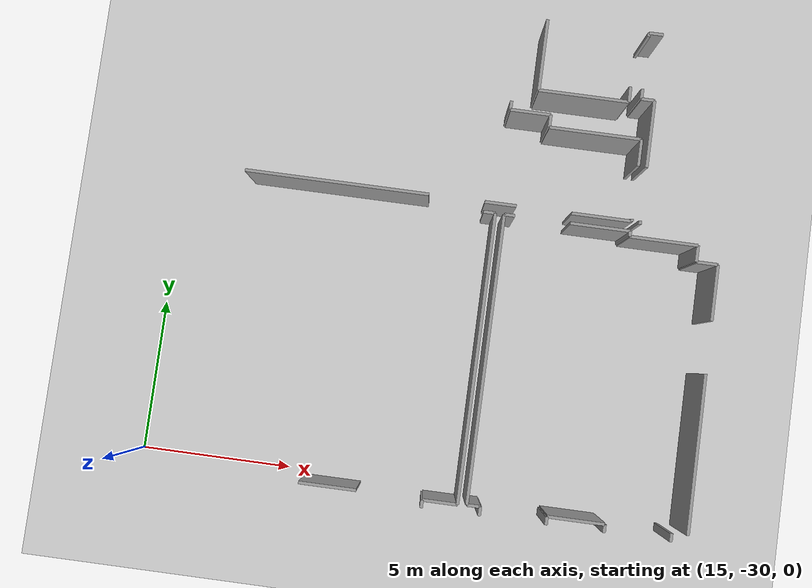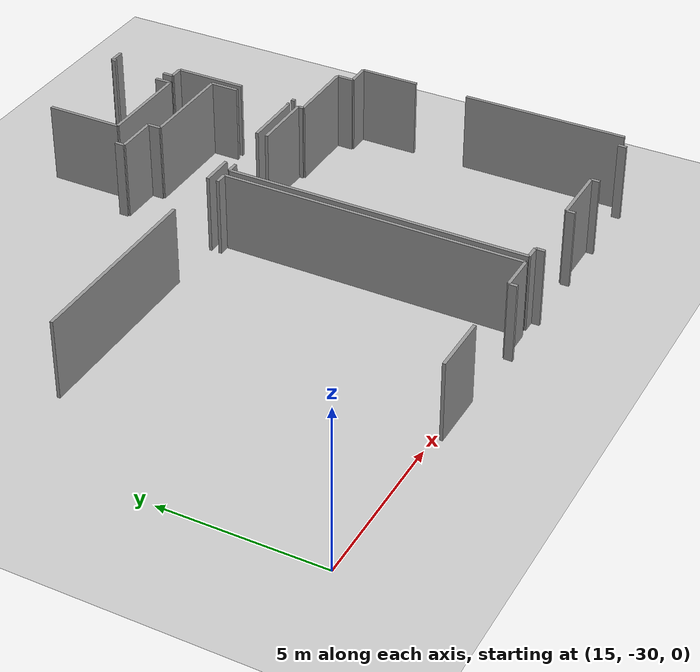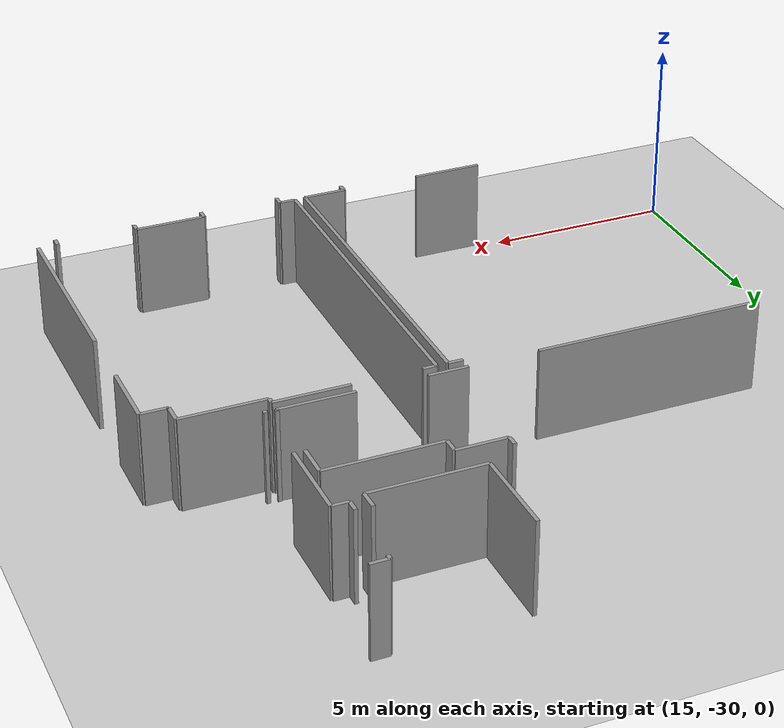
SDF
<sdf version="1.6">
 <world name="default">
  <model name="ground_plane">
   <static>1</static>
   <link name="link">
    <collision name="collision">
     <geometry><plane><normal>0 0 1</normal><size>100 100</size></plane></geometry>
     <surface><friction><ode><mu>100</mu><mu2>50</mu2></ode></friction></surface>
    </collision>
    <visual name="visual">
     <cast_shadows>0</cast_shadows>
     <geometry><plane><normal>0 0 1</normal><size>100 100</size></plane></geometry>
     <material>
      <script><uri>file://media/materials/scripts/gazebo.material</uri><name>Gazebo/Grey</name></script>
     </material>
    </visual>
   </link>
  </model>
  <model name="0510032260_A_40_1_102">
   <static>1</static>
   <link name="Wall_270">
    <collision name="Wall_270_Collision">
     <geometry><box><size>0.295093827145 0.1 2.5</size></box></geometry>
     <pose>0.147546913572 0 1.25 0 0 0</pose>
    </collision>
    <visual name="Wall_270_Visual">
     <pose>0.147546913572 0 1.25 0 0 0</pose>
     <geometry><box><size>0.295093827145 0.1 2.5</size></box></geometry>
     <material>
      <script><uri>file://media/materials/scripts/gazebo.material</uri><name>Gazebo/Grey</name></script>
      <ambient>1 1 1 1</ambient>
     </material>
    </visual>
    <pose>76.0914346637 -47.806088452 0 0 0 -1.57079632679</pose>
   </link>
   <link name="Wall_271">
    <collision name="Wall_271_Collision">
     <geometry><box><size>1.33407794285 0.1 2.5</size></box></geometry>
     <pose>0.667038971423 0 1.25 0 0 0</pose>
    </collision>
    <visual name="Wall_271_Visual">
     <pose>0.667038971423 0 1.25 0 0 0</pose>
     <geometry><box><size>1.33407794285 0.1 2.5</size></box></geometry>
     <material>
      <script><uri>file://media/materials/scripts/gazebo.material</uri><name>Gazebo/Grey</name></script>
      <ambient>1 1 1 1</ambient>
     </material>
    </visual>
    <pose>76.0914346637 -48.1011822791 0 0 0 0.0</pose>
   </link>
   <link name="Wall_272">
    <collision name="Wall_272_Collision">
     <geometry><box><size>0.412623669698 0.1 2.5</size></box></geometry>
     <pose>0.206311834849 0 1.25 0 0 0</pose>
    </collision>
    <visual name="Wall_272_Visual">
     <pose>0.206311834849 0 1.25 0 0 0</pose>
     <geometry><box><size>0.412623669698 0.1 2.5</size></box></geometry>
     <material>
      <script><uri>file://media/materials/scripts/gazebo.material</uri><name>Gazebo/Grey</name></script>
      <ambient>1 1 1 1</ambient>
     </material>
    </visual>
    <pose>77.4255126065 -48.1011822791 0 0 0 -1.57079632679</pose>
   </link>
   <link name="Wall_273">
    <collision name="Wall_273_Collision">
     <geometry><box><size>3.04232216631 0.1 2.5</size></box></geometry>
     <pose>1.52116108315 0 1.25 0 0 0</pose>
    </collision>
    <visual name="Wall_273_Visual">
     <pose>1.52116108315 0 1.25 0 0 0</pose>
     <geometry><box><size>3.04232216631 0.1 2.5</size></box></geometry>
     <material>
      <script><uri>file://media/materials/scripts/gazebo.material</uri><name>Gazebo/Grey</name></script>
      <ambient>1 1 1 1</ambient>
     </material>
    </visual>
    <pose>77.4255126065 -48.5138059488 0 0 0 0.0</pose>
   </link>
   <link name="Wall_274">
    <collision name="Wall_274_Collision">
     <geometry><box><size>0.892516039777 0.1 2.5</size></box></geometry>
     <pose>0.446258019889 0 1.25 0 0 0</pose>
    </collision>
    <visual name="Wall_274_Visual">
     <pose>0.446258019889 0 1.25 0 0 0</pose>
     <geometry><box><size>0.892516039777 0.1 2.5</size></box></geometry>
     <material>
      <script><uri>file://media/materials/scripts/gazebo.material</uri><name>Gazebo/Grey</name></script>
      <ambient>1 1 1 1</ambient>
     </material>
    </visual>
    <pose>80.4678347728 -48.5138059488 0 0 0 -1.57079632679</pose>
   </link>
   <link name="Wall_275">
    <collision name="Wall_275_Collision">
     <geometry><box><size>0.0751378691053 0.1 2.5</size></box></geometry>
     <pose>0.0375689345526 0 1.25 0 0 0</pose>
    </collision>
    <visual name="Wall_275_Visual">
     <pose>0.0375689345526 0 1.25 0 0 0</pose>
     <geometry><box><size>0.0751378691053 0.1 2.5</size></box></geometry>
     <material>
      <script><uri>file://media/materials/scripts/gazebo.material</uri><name>Gazebo/Grey</name></script>
      <ambient>1 1 1 1</ambient>
     </material>
    </visual>
    <pose>80.4678347728 -51.1601312374 0 0 0 -1.57079632679</pose>
   </link>
   <link name="Wall_276">
    <collision name="Wall_276_Collision">
     <geometry><box><size>1.9686883238 0.1 2.5</size></box></geometry>
     <pose>0.984344161902 0 1.25 0 0 0</pose>
    </collision>
    <visual name="Wall_276_Visual">
     <pose>0.984344161902 0 1.25 0 0 0</pose>
     <geometry><box><size>1.9686883238 0.1 2.5</size></box></geometry>
     <material>
      <script><uri>file://media/materials/scripts/gazebo.material</uri><name>Gazebo/Grey</name></script>
      <ambient>1 1 1 1</ambient>
     </material>
    </visual>
    <pose>80.4678347728 -51.2352691065 0 0 0 3.14159265359</pose>
   </link>
   <link name="Wall_277">
    <collision name="Wall_277_Collision">
     <geometry><box><size>1.03746105079 0.1 2.5</size></box></geometry>
     <pose>0.518730525394 0 1.25 0 0 0</pose>
    </collision>
    <visual name="Wall_277_Visual">
     <pose>0.518730525394 0 1.25 0 0 0</pose>
     <geometry><box><size>1.03746105079 0.1 2.5</size></box></geometry>
     <material>
      <script><uri>file://media/materials/scripts/gazebo.material</uri><name>Gazebo/Grey</name></script>
      <ambient>1 1 1 1</ambient>
     </material>
    </visual>
    <pose>76.6879684218 -51.2352691065 0 0 0 3.14159265359</pose>
   </link>
   <link name="Wall_278">
    <collision name="Wall_278_Collision">
     <geometry><box><size>6.05392919017 0.1 2.5</size></box></geometry>
     <pose>3.02696459509 0 1.25 0 0 0</pose>
    </collision>
    <visual name="Wall_278_Visual">
     <pose>3.02696459509 0 1.25 0 0 0</pose>
     <geometry><box><size>6.05392919017 0.1 2.5</size></box></geometry>
     <material>
      <script><uri>file://media/materials/scripts/gazebo.material</uri><name>Gazebo/Grey</name></script>
      <ambient>1 1 1 1</ambient>
     </material>
    </visual>
    <pose>73.8150872272 -51.2352691065 0 0 0 3.14159265359</pose>
   </link>
   <link name="Wall_449">
    <collision name="Wall_449_Collision">
     <geometry><box><size>1.13392182869 0.1 2.5</size></box></geometry>
     <pose>0.566960914347 0 1.25 0 0 0</pose>
    </collision>
    <visual name="Wall_449_Visual">
     <pose>0.566960914347 0 1.25 0 0 0</pose>
     <geometry><box><size>1.13392182869 0.1 2.5</size></box></geometry>
     <material>
      <script><uri>file://media/materials/scripts/gazebo.material</uri><name>Gazebo/Grey</name></script>
      <ambient>1 1 1 1</ambient>
     </material>
    </visual>
    <pose>76.0362235605 -61.0031920902 0 0 0 3.14159265359</pose>
   </link>
   <link name="Wall_450">
    <collision name="Wall_450_Collision">
     <geometry><box><size>0.254859528992 0.1 2.5</size></box></geometry>
     <pose>0.127429764496 0 1.25 0 0 0</pose>
    </collision>
    <visual name="Wall_450_Visual">
     <pose>0.127429764496 0 1.25 0 0 0</pose>
     <geometry><box><size>0.254859528992 0.1 2.5</size></box></geometry>
     <material>
      <script><uri>file://media/materials/scripts/gazebo.material</uri><name>Gazebo/Grey</name></script>
      <ambient>1 1 1 1</ambient>
     </material>
    </visual>
    <pose>74.9023017319 -61.0031920902 0 0 0 -1.57079632679</pose>
   </link>
   <link name="Wall_452">
    <collision name="Wall_452_Collision">
     <geometry><box><size>1.86105840319 0.1 2.5</size></box></geometry>
     <pose>0.930529201597 0 1.25 0 0 0</pose>
    </collision>
    <visual name="Wall_452_Visual">
     <pose>0.930529201597 0 1.25 0 0 0</pose>
     <geometry><box><size>1.86105840319 0.1 2.5</size></box></geometry>
     <material>
      <script><uri>file://media/materials/scripts/gazebo.material</uri><name>Gazebo/Grey</name></script>
      <ambient>1 1 1 1</ambient>
     </material>
    </visual>
    <pose>72.7741992804 -60.9826307139 0 0 0 3.14159265359</pose>
   </link>
   <link name="Wall_464">
    <collision name="Wall_464_Collision">
     <geometry><box><size>0.38622387785 0.1 2.5</size></box></geometry>
     <pose>0.193111938925 0 1.25 0 0 0</pose>
    </collision>
    <visual name="Wall_464_Visual">
     <pose>0.193111938925 0 1.25 0 0 0</pose>
     <geometry><box><size>0.38622387785 0.1 2.5</size></box></geometry>
     <material>
      <script><uri>file://media/materials/scripts/gazebo.material</uri><name>Gazebo/Grey</name></script>
      <ambient>1 1 1 1</ambient>
     </material>
    </visual>
    <pose>75.650507371 -51.5620934527 0 0 0 0.0</pose>
   </link>
   <link name="Wall_465">
    <collision name="Wall_465_Collision">
     <geometry><box><size>9.44109865114 0.1 2.5</size></box></geometry>
     <pose>4.72054932557 0 1.25 0 0 0</pose>
    </collision>
    <visual name="Wall_465_Visual">
     <pose>4.72054932557 0 1.25 0 0 0</pose>
     <geometry><box><size>9.44109865114 0.1 2.5</size></box></geometry>
     <material>
      <script><uri>file://media/materials/scripts/gazebo.material</uri><name>Gazebo/Grey</name></script>
      <ambient>1 1 1 1</ambient>
     </material>
    </visual>
    <pose>76.0367312488 -51.5620934527 0 0 0 -1.57085010108</pose>
   </link>
   <link name="Wall_467">
    <collision name="Wall_467_Collision">
     <geometry><box><size>0.264886373011 0.1 2.5</size></box></geometry>
     <pose>0.132443186506 0 1.25 0 0 0</pose>
    </collision>
    <visual name="Wall_467_Visual">
     <pose>0.132443186506 0 1.25 0 0 0</pose>
     <geometry><box><size>0.264886373011 0.1 2.5</size></box></geometry>
     <material>
      <script><uri>file://media/materials/scripts/gazebo.material</uri><name>Gazebo/Grey</name></script>
      <ambient>1 1 1 1</ambient>
     </material>
    </visual>
    <pose>82.9015655838 -60.9949421553 0 0 0 -1.57079632679</pose>
   </link>
   <link name="Wall_468">
    <collision name="Wall_468_Collision">
     <geometry><box><size>0.264505606783 0.1 2.5</size></box></geometry>
     <pose>0.132252803391 0 1.25 0 0 0</pose>
    </collision>
    <visual name="Wall_468_Visual">
     <pose>0.132252803391 0 1.25 0 0 0</pose>
     <geometry><box><size>0.264505606783 0.1 2.5</size></box></geometry>
     <material>
      <script><uri>file://media/materials/scripts/gazebo.material</uri><name>Gazebo/Grey</name></script>
      <ambient>1 1 1 1</ambient>
     </material>
    </visual>
    <pose>80.7661016519 -61.2598285283 0 0 0 1.57079632679</pose>
   </link>
   <link name="Wall_469">
    <collision name="Wall_469_Collision">
     <geometry><box><size>1.85775842921 0.1 2.5</size></box></geometry>
     <pose>0.928879214606 0 1.25 0 0 0</pose>
    </collision>
    <visual name="Wall_469_Visual">
     <pose>0.928879214606 0 1.25 0 0 0</pose>
     <geometry><box><size>1.85775842921 0.1 2.5</size></box></geometry>
     <material>
      <script><uri>file://media/materials/scripts/gazebo.material</uri><name>Gazebo/Grey</name></script>
      <ambient>1 1 1 1</ambient>
     </material>
    </visual>
    <pose>80.7661016519 -60.9953229215 0 0 0 3.14159265359</pose>
   </link>
   <link name="Wall_470">
    <collision name="Wall_470_Collision">
     <geometry><box><size>0.268440191145 0.1 2.5</size></box></geometry>
     <pose>0.134220095572 0 1.25 0 0 0</pose>
    </collision>
    <visual name="Wall_470_Visual">
     <pose>0.134220095572 0 1.25 0 0 0</pose>
     <geometry><box><size>0.268440191145 0.1 2.5</size></box></geometry>
     <material>
      <script><uri>file://media/materials/scripts/gazebo.material</uri><name>Gazebo/Grey</name></script>
      <ambient>1 1 1 1</ambient>
     </material>
    </visual>
    <pose>78.9083432227 -60.9953229215 0 0 0 -1.57079632679</pose>
   </link>
   <link name="Wall_471">
    <collision name="Wall_471_Collision">
     <geometry><box><size>0.29027078825 0.1 2.5</size></box></geometry>
     <pose>0.145135394125 0 1.25 0 0 0</pose>
    </collision>
    <visual name="Wall_471_Visual">
     <pose>0.145135394125 0 1.25 0 0 0</pose>
     <geometry><box><size>0.29027078825 0.1 2.5</size></box></geometry>
     <material>
      <script><uri>file://media/materials/scripts/gazebo.material</uri><name>Gazebo/Grey</name></script>
      <ambient>1 1 1 1</ambient>
     </material>
    </visual>
    <pose>76.7676754856 -61.2637631126 0 0 0 1.57079632679</pose>
   </link>
   <link name="Wall_472">
    <collision name="Wall_472_Collision">
     <geometry><box><size>0.435469643412 0.1 2.5</size></box></geometry>
     <pose>0.217734821706 0 1.25 0 0 0</pose>
    </collision>
    <visual name="Wall_472_Visual">
     <pose>0.217734821706 0 1.25 0 0 0</pose>
     <geometry><box><size>0.435469643412 0.1 2.5</size></box></geometry>
     <material>
      <script><uri>file://media/materials/scripts/gazebo.material</uri><name>Gazebo/Grey</name></script>
      <ambient>1 1 1 1</ambient>
     </material>
    </visual>
    <pose>76.7676754856 -60.9734923244 0 0 0 3.14159265359</pose>
   </link>
   <link name="Wall_473">
    <collision name="Wall_473_Collision">
     <geometry><box><size>9.41139887166 0.1 2.5</size></box></geometry>
     <pose>4.70569943583 0 1.25 0 0 0</pose>
    </collision>
    <visual name="Wall_473_Visual">
     <pose>4.70569943583 0 1.25 0 0 0</pose>
     <geometry><box><size>9.41139887166 0.1 2.5</size></box></geometry>
     <material>
      <script><uri>file://media/materials/scripts/gazebo.material</uri><name>Gazebo/Grey</name></script>
      <ambient>1 1 1 1</ambient>
     </material>
    </visual>
    <pose>76.3322058422 -60.9734923244 0 0 0 1.57079632679</pose>
   </link>
   <link name="Wall_474">
    <collision name="Wall_474_Collision">
     <geometry><box><size>0.350178008212 0.1 2.5</size></box></geometry>
     <pose>0.175089004106 0 1.25 0 0 0</pose>
    </collision>
    <visual name="Wall_474_Visual">
     <pose>0.175089004106 0 1.25 0 0 0</pose>
     <geometry><box><size>0.350178008212 0.1 2.5</size></box></geometry>
     <material>
      <script><uri>file://media/materials/scripts/gazebo.material</uri><name>Gazebo/Grey</name></script>
      <ambient>1 1 1 1</ambient>
     </material>
    </visual>
    <pose>76.3322058422 -51.5620934527 0 0 0 0.0</pose>
   </link>
   <link name="Wall_475">
    <collision name="Wall_475_Collision">
     <geometry><box><size>1.96741910304 0.1 2.5</size></box></geometry>
     <pose>0.983709551521 0 1.25 0 0 0</pose>
    </collision>
    <visual name="Wall_475_Visual">
     <pose>0.983709551521 0 1.25 0 0 0</pose>
     <geometry><box><size>1.96741910304 0.1 2.5</size></box></geometry>
     <material>
      <script><uri>file://media/materials/scripts/gazebo.material</uri><name>Gazebo/Grey</name></script>
      <ambient>1 1 1 1</ambient>
     </material>
    </visual>
    <pose>78.490769592 -51.5620934527 0 0 0 0.0</pose>
   </link>
   <link name="Wall_476">
    <collision name="Wall_476_Collision">
     <geometry><box><size>0.176421685906 0.1 2.5</size></box></geometry>
     <pose>0.088210842953 0 1.25 0 0 0</pose>
    </collision>
    <visual name="Wall_476_Visual">
     <pose>0.088210842953 0 1.25 0 0 0</pose>
     <geometry><box><size>0.176421685906 0.1 2.5</size></box></geometry>
     <material>
      <script><uri>file://media/materials/scripts/gazebo.material</uri><name>Gazebo/Grey</name></script>
      <ambient>1 1 1 1</ambient>
     </material>
    </visual>
    <pose>80.4581886951 -51.5620934527 0 0 0 -1.57079632679</pose>
   </link>
   <link name="Wall_477">
    <collision name="Wall_477_Collision">
     <geometry><box><size>2.23611313834 0.1 2.5</size></box></geometry>
     <pose>1.11805656917 0 1.25 0 0 0</pose>
    </collision>
    <visual name="Wall_477_Visual">
     <pose>1.11805656917 0 1.25 0 0 0</pose>
     <geometry><box><size>2.23611313834 0.1 2.5</size></box></geometry>
     <material>
      <script><uri>file://media/materials/scripts/gazebo.material</uri><name>Gazebo/Grey</name></script>
      <ambient>1 1 1 1</ambient>
     </material>
    </visual>
    <pose>80.4581886951 -51.7385151386 0 0 0 0.0</pose>
   </link>
   <link name="Wall_478">
    <collision name="Wall_478_Collision">
     <geometry><box><size>0.537388070594 0.1 2.5</size></box></geometry>
     <pose>0.268694035297 0 1.25 0 0 0</pose>
    </collision>
    <visual name="Wall_478_Visual">
     <pose>0.268694035297 0 1.25 0 0 0</pose>
     <geometry><box><size>0.537388070594 0.1 2.5</size></box></geometry>
     <material>
      <script><uri>file://media/materials/scripts/gazebo.material</uri><name>Gazebo/Grey</name></script>
      <ambient>1 1 1 1</ambient>
     </material>
    </visual>
    <pose>82.6943018334 -51.7385151386 0 0 0 -1.57079632679</pose>
   </link>
   <link name="Wall_479">
    <collision name="Wall_479_Collision">
     <geometry><box><size>0.71012901629 0.1 2.5</size></box></geometry>
     <pose>0.355064508145 0 1.25 0 0 0</pose>
    </collision>
    <visual name="Wall_479_Visual">
     <pose>0.355064508145 0 1.25 0 0 0</pose>
     <geometry><box><size>0.71012901629 0.1 2.5</size></box></geometry>
     <material>
      <script><uri>file://media/materials/scripts/gazebo.material</uri><name>Gazebo/Grey</name></script>
      <ambient>1 1 1 1</ambient>
     </material>
    </visual>
    <pose>82.6943018334 -52.2759032092 0 0 0 0.0</pose>
   </link>
   <link name="Wall_480">
    <collision name="Wall_480_Collision">
     <geometry><box><size>1.8429085463 0.1 2.5</size></box></geometry>
     <pose>0.921454273149 0 1.25 0 0 0</pose>
    </collision>
    <visual name="Wall_480_Visual">
     <pose>0.921454273149 0 1.25 0 0 0</pose>
     <geometry><box><size>1.8429085463 0.1 2.5</size></box></geometry>
     <material>
      <script><uri>file://media/materials/scripts/gazebo.material</uri><name>Gazebo/Grey</name></script>
      <ambient>1 1 1 1</ambient>
     </material>
    </visual>
    <pose>83.4044308497 -52.2759032092 0 0 0 -1.57079632679</pose>
   </link>
   <link name="Wall_481">
    <collision name="Wall_481_Collision">
     <geometry><box><size>5.16524517813 0.1 2.5</size></box></geometry>
     <pose>2.58262258907 0 1.25 0 0 0</pose>
    </collision>
    <visual name="Wall_481_Visual">
     <pose>2.58262258907 0 1.25 0 0 0</pose>
     <geometry><box><size>5.16524517813 0.1 2.5</size></box></geometry>
     <material>
      <script><uri>file://media/materials/scripts/gazebo.material</uri><name>Gazebo/Grey</name></script>
      <ambient>1 1 1 1</ambient>
     </material>
    </visual>
    <pose>83.4044308497 -55.8297213426 0 0 0 -1.56772478151</pose>
   </link>
   <link name="Wall_490">
    <collision name="Wall_490_Collision">
     <geometry><box><size>0.117022154248 0.1 2.5</size></box></geometry>
     <pose>0.0585110771242 0 1.25 0 0 0</pose>
    </collision>
    <visual name="Wall_490_Visual">
     <pose>0.0585110771242 0 1.25 0 0 0</pose>
     <geometry><box><size>0.117022154248 0.1 2.5</size></box></geometry>
     <material>
      <script><uri>file://media/materials/scripts/gazebo.material</uri><name>Gazebo/Grey</name></script>
      <ambient>1 1 1 1</ambient>
     </material>
    </visual>
    <pose>80.7384326393 -51.3021570407 0 0 0 1.57079632679</pose>
   </link>
   <link name="Wall_491">
    <collision name="Wall_491_Collision">
     <geometry><box><size>2.23649390457 0.1 2.5</size></box></geometry>
     <pose>1.11824695228 0 1.25 0 0 0</pose>
    </collision>
    <visual name="Wall_491_Visual">
     <pose>1.11824695228 0 1.25 0 0 0</pose>
     <geometry><box><size>2.23649390457 0.1 2.5</size></box></geometry>
     <material>
      <script><uri>file://media/materials/scripts/gazebo.material</uri><name>Gazebo/Grey</name></script>
      <ambient>1 1 1 1</ambient>
     </material>
    </visual>
    <pose>80.7384326393 -49.4159680664 0 0 0 1.57079632679</pose>
   </link>
   <link name="Wall_492">
    <collision name="Wall_492_Collision">
     <geometry><box><size>0.436738864174 0.1 2.5</size></box></geometry>
     <pose>0.218369432087 0 1.25 0 0 0</pose>
    </collision>
    <visual name="Wall_492_Visual">
     <pose>0.218369432087 0 1.25 0 0 0</pose>
     <geometry><box><size>0.436738864174 0.1 2.5</size></box></geometry>
     <material>
      <script><uri>file://media/materials/scripts/gazebo.material</uri><name>Gazebo/Grey</name></script>
      <ambient>1 1 1 1</ambient>
     </material>
    </visual>
    <pose>80.7384326393 -47.1794741618 0 0 0 3.14159265359</pose>
   </link>
   <link name="Wall_493">
    <collision name="Wall_493_Collision">
     <geometry><box><size>0.333805060383 0.1 2.5</size></box></geometry>
     <pose>0.166902530192 0 1.25 0 0 0</pose>
    </collision>
    <visual name="Wall_493_Visual">
     <pose>0.166902530192 0 1.25 0 0 0</pose>
     <geometry><box><size>0.333805060383 0.1 2.5</size></box></geometry>
     <material>
      <script><uri>file://media/materials/scripts/gazebo.material</uri><name>Gazebo/Grey</name></script>
      <ambient>1 1 1 1</ambient>
     </material>
    </visual>
    <pose>80.3016937751 -47.1794741618 0 0 0 1.57079632679</pose>
   </link>
   <link name="Wall_494">
    <collision name="Wall_494_Collision">
     <geometry><box><size>0.125145167125 0.1 2.5</size></box></geometry>
     <pose>0.0625725835623 0 1.25 0 0 0</pose>
    </collision>
    <visual name="Wall_494_Visual">
     <pose>0.0625725835623 0 1.25 0 0 0</pose>
     <geometry><box><size>0.125145167125 0.1 2.5</size></box></geometry>
     <material>
      <script><uri>file://media/materials/scripts/gazebo.material</uri><name>Gazebo/Grey</name></script>
      <ambient>1 1 1 1</ambient>
     </material>
    </visual>
    <pose>80.3016937751 -45.0763753593 0 0 0 1.57079632679</pose>
   </link>
   <link name="Wall_495">
    <collision name="Wall_495_Collision">
     <geometry><box><size>0.475703941565 0.1 2.5</size></box></geometry>
     <pose>0.237851970783 0 1.25 0 0 0</pose>
    </collision>
    <visual name="Wall_495_Visual">
     <pose>0.237851970783 0 1.25 0 0 0</pose>
     <geometry><box><size>0.475703941565 0.1 2.5</size></box></geometry>
     <material>
      <script><uri>file://media/materials/scripts/gazebo.material</uri><name>Gazebo/Grey</name></script>
      <ambient>1 1 1 1</ambient>
     </material>
    </visual>
    <pose>80.3016937751 -44.9512301922 0 0 0 0.0</pose>
   </link>
   <link name="Wall_512">
    <collision name="Wall_512_Collision">
     <geometry><box><size>2.97987650482 0.1 2.5</size></box></geometry>
     <pose>1.48993825241 0 1.25 0 0 0</pose>
    </collision>
    <visual name="Wall_512_Visual">
     <pose>1.48993825241 0 1.25 0 0 0</pose>
     <geometry><box><size>2.97987650482 0.1 2.5</size></box></geometry>
     <material>
      <script><uri>file://media/materials/scripts/gazebo.material</uri><name>Gazebo/Grey</name></script>
      <ambient>1 1 1 1</ambient>
     </material>
    </visual>
    <pose>79.9106468584 -47.3315268091 0 0 0 3.14159265359</pose>
   </link>
   <link name="Wall_513">
    <collision name="Wall_513_Collision">
     <geometry><box><size>2.38867347392 0.1 2.5</size></box></geometry>
     <pose>1.19433673696 0 1.25 0 0 0</pose>
    </collision>
    <visual name="Wall_513_Visual">
     <pose>1.19433673696 0 1.25 0 0 0</pose>
     <geometry><box><size>2.38867347392 0.1 2.5</size></box></geometry>
     <material>
      <script><uri>file://media/materials/scripts/gazebo.material</uri><name>Gazebo/Grey</name></script>
      <ambient>1 1 1 1</ambient>
     </material>
    </visual>
    <pose>76.9307703535 -47.3315268091 0 0 0 1.57079632679</pose>
   </link>
   <link name="Wall_516">
    <collision name="Wall_516_Collision">
     <geometry><box><size>0.507777539008 0.1 2.5</size></box></geometry>
     <pose>0.253888769504 0 1.25 0 0 0</pose>
    </collision>
    <visual name="Wall_516_Visual">
     <pose>0.253888769504 0 1.25 0 0 0</pose>
     <geometry><box><size>0.507777539008 0.1 2.5</size></box></geometry>
     <material>
      <script><uri>file://media/materials/scripts/gazebo.material</uri><name>Gazebo/Grey</name></script>
      <ambient>1 1 1 1</ambient>
     </material>
    </visual>
    <pose>79.9011277026 -46.8238385044 0 0 0 -1.5520485236</pose>
   </link>
   <pose>-50.3 30.7834798226 0 0 0 0</pose>
  </model>
 </world>
</sdf>
